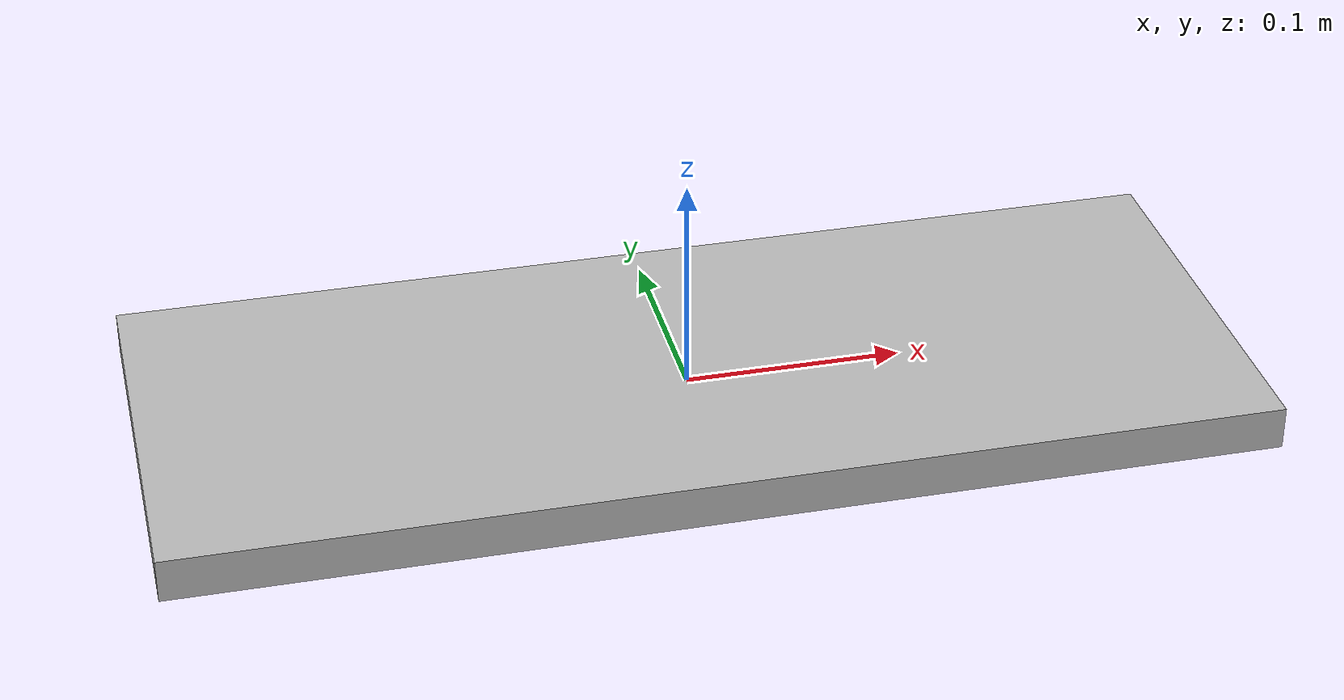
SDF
<?xml version="1.0" ?>
<sdf version="1.5">
  <model name="dia_panel_short">
    <static>true</static>
    <link name="link">
      <collision name="surface">
        <pose>0 0 0 0 0 0</pose>
        <geometry>
          <box>
            <size>0.5 0.2 0.02</size>
          </box>
        </geometry>
      </collision>
      <visual name="surface">
        <pose>0 0 0 0 0 0</pose>
        <geometry>
          <box>
            <size>0.5 0.2 0.02</size>
          </box>
        </geometry>
        <material>
          <script>
            <uri>model://dia_panel_short/materials/scripts</uri>
            <uri>model://dia_panel_short/materials/textures</uri>
            <name>dia_panel_short/Diffuse</name>
          </script>
        </material>
      </visual>
    </link>
  </model>
</sdf>
